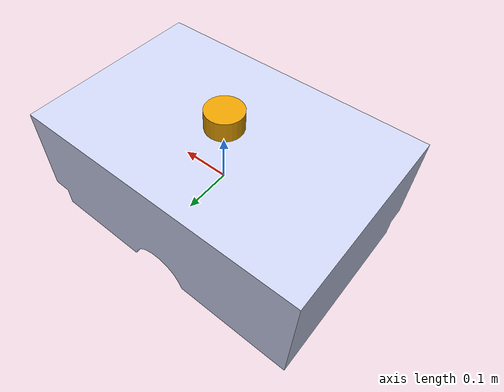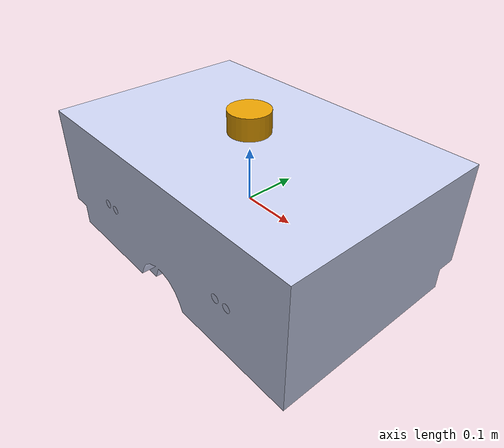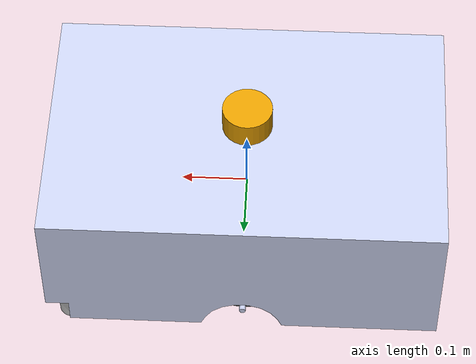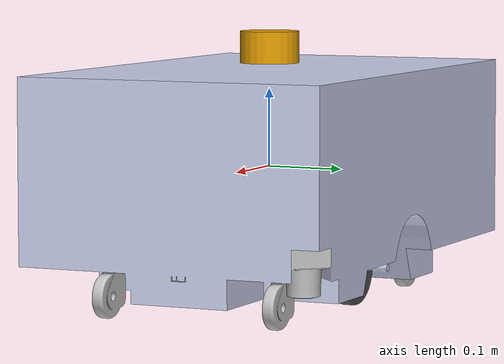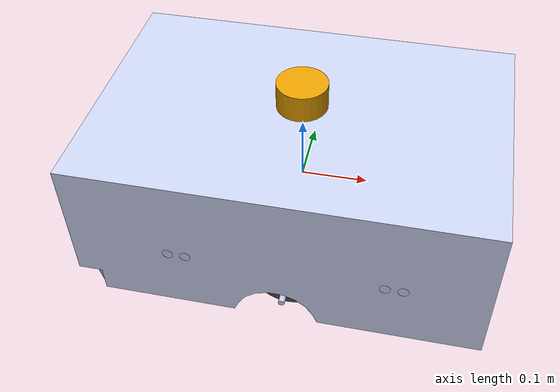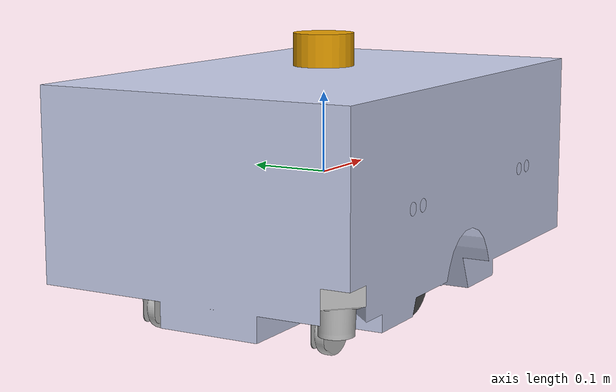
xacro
<?xml version="1.0" encoding="utf-8"?>
<robot
  name="robot_assisted_cleaning_solution" xmlns:xacro="example_robot">
  <xacro:include filename="$(find robot_assisted_cleaning_solution)/urdf/robot_assisted_cleaning_solution.gazebo.xacro" />

  <!-- region footprint -->
  <link name="base_footprint" />
  <joint name="base_joint" type="fixed">
    <parent link="base_footprint" />
    <child link="base_link" />
    <origin xyz="0 0 0" rpy="0 0 0" />
  </joint>
  <!-- endregion footprint-->

  <link
    name="base_link">
    <inertial>
      <origin
        xyz="-0.000913386239851091 -2.54764905186757E-06 0.0112927831007752"
        rpy="0 0 0" />
      <mass
        value="43.66289" />
      <inertia
        ixx="0.794216412051149"
        ixy="-0.000219442594284593"
        ixz="0.00035981237829047"
        iyy="1.53053604086592"
        iyz="-0.000149715728017838"
        izz="1.83362160851237" />
    </inertial>
    <visual>
      <origin
        xyz="0 0 0"
        rpy="0 0 0" />
      <geometry>
        <mesh
          filename="package://robot_assisted_cleaning_solution/meshes/base_link.STL" />
      </geometry>
      <material
        name="">
        <color
          rgba="0.792156862745098 0.819607843137255 0.933333333333333 1" />
      </material>
    </visual>
    <collision>
      <origin
        xyz="0 0 0"
        rpy="0 0 0" />
      <geometry>
        <mesh
          filename="package://robot_assisted_cleaning_solution/meshes/base_link.STL" />
      </geometry>
    </collision>
  </link>
  <link
    name="wheel_1">
    <inertial>
      <origin
        xyz="-0.000913386239851091 -2.54764905186757E-06 0.0112927831007752"
        rpy="0 0 0" />
      <mass
        value="43.66289" />
      <inertia
        ixx="0.794216412051149"
        ixy="-0.000219442594284593"
        ixz="0.00035981237829047"
        iyy="1.53053604086592"
        iyz="-0.000149715728017838"
        izz="1.83362160851237" />
    </inertial>
    <visual>
      <origin
        xyz="0 0 0"
        rpy="0 0 0" />
      <geometry>
        <mesh
          filename="package://robot_assisted_cleaning_solution/meshes/wheel_1.STL" />
      </geometry>
      <material
        name="">
        <color
          rgba="0.298039215686275 0.298039215686275 0.298039215686275 1" />
      </material>
    </visual>
    <collision>
      <origin
        xyz="0 0 0"
        rpy="0 0 0" />
      <geometry>
        <mesh
          filename="package://robot_assisted_cleaning_solution/meshes/wheel_1.STL" />
      </geometry>
    </collision>
  </link>
  <joint
    name="wheel_joint_1"
    type="continuous">
    <origin
      xyz="-5.78290400675118E-05 0.114675012827827 -0.122971466594445"
      rpy="0 0 0" />
    <parent
      link="base_link" />
    <child
      link="wheel_1" />
    <axis
      xyz="0 1 0" />
  </joint>
  <link
    name="wheel_2">
    <inertial>
      <origin
        xyz="-0.000913386239851091 -2.54764905186757E-06 0.0112927831007752"
        rpy="0 0 0" />
      <mass
        value="43.66289" />
      <inertia
        ixx="0.794216412051149"
        ixy="-0.000219442594284593"
        ixz="0.00035981237829047"
        iyy="1.53053604086592"
        iyz="-0.000149715728017838"
        izz="1.83362160851237" />
    </inertial>
    <visual>
      <origin
        xyz="0 0 0"
        rpy="0 0 0" />
      <geometry>
        <mesh
          filename="package://robot_assisted_cleaning_solution/meshes/wheel_2.STL" />
      </geometry>
      <material
        name="">
        <color
          rgba="0.298039215686275 0.298039215686275 0.298039215686275 1" />
      </material>
    </visual>
    <collision>
      <origin
        xyz="0 0 0"
        rpy="0 0 0" />
      <geometry>
        <mesh
          filename="package://robot_assisted_cleaning_solution/meshes/wheel_2.STL" />
      </geometry>
    </collision>
  </link>
  <joint
    name="wheel_joint_2"
    type="continuous">
    <origin
      xyz="-5.78290400674879E-05 -0.114614309053521 -0.122971466594445"
      rpy="0 0 0" />
    <parent
      link="base_link" />
    <child
      link="wheel_2" />
    <axis
      xyz="0 -1 0" />
  </joint>
  <link
    name="caster_1">
    <inertial>
      <origin
        xyz="-0.000913386239851091 -2.54764905186757E-06 0.0112927831007752"
        rpy="0 0 0" />
      <mass
        value="43.66289" />
      <inertia
        ixx="0.794216412051149"
        ixy="-0.000219442594284593"
        ixz="0.00035981237829047"
        iyy="1.53053604086592"
        iyz="-0.000149715728017838"
        izz="1.83362160851237" />
    </inertial>
    <visual>
      <origin
        xyz="0 0 0"
        rpy="0 0 0" />
      <geometry>
        <mesh
          filename="package://robot_assisted_cleaning_solution/meshes/caster_1.STL" />
      </geometry>
      <material
        name="">
        <color
          rgba="0.752941176470588 0.752941176470588 0.752941176470588 1" />
      </material>
    </visual>
    <collision>
      <origin
        xyz="0 0 0"
        rpy="0 0 0" />
      <geometry>
        <mesh
          filename="package://robot_assisted_cleaning_solution/meshes/caster_1.STL" />
      </geometry>
    </collision>
  </link>
  <joint
    name="caster_joint_1"
    type="continuous">
    <origin
      xyz="-0.208635525832463 -0.114614309053521 -0.105971545183645"
      rpy="0 0 0" />
    <parent
      link="base_link" />
    <child
      link="caster_1" />
    <axis
      xyz="0 0 -1" />
  </joint>
  <link
    name="caster_2">
    <inertial>
      <origin
        xyz="-0.000913386239851091 -2.54764905186757E-06 0.0112927831007752"
        rpy="0 0 0" />
      <mass
        value="43.66289" />
      <inertia
        ixx="0.794216412051149"
        ixy="-0.000219442594284593"
        ixz="0.00035981237829047"
        iyy="1.53053604086592"
        iyz="-0.000149715728017838"
        izz="1.83362160851237" />
    </inertial>
    <visual>
      <origin
        xyz="0 0 0"
        rpy="0 0 0" />
      <geometry>
        <mesh
          filename="package://robot_assisted_cleaning_solution/meshes/caster_2.STL" />
      </geometry>
      <material
        name="">
        <color
          rgba="0.752941176470588 0.752941176470588 0.752941176470588 1" />
      </material>
    </visual>
    <collision>
      <origin
        xyz="0 0 0"
        rpy="0 0 0" />
      <geometry>
        <mesh
          filename="package://robot_assisted_cleaning_solution/meshes/caster_2.STL" />
      </geometry>
    </collision>
  </link>
  <joint
    name="caster_joint_2"
    type="continuous">
    <origin
      xyz="0.208521761692918 -0.114614309053521 -0.105971545183645"
      rpy="0 0 0" />
    <parent
      link="base_link" />
    <child
      link="caster_2" />
    <axis
      xyz="0 0 -1" />
  </joint>
  <link
    name="caster_3">
    <inertial>
      <origin
        xyz="-0.000913386239851091 -2.54764905186757E-06 0.0112927831007752"
        rpy="0 0 0" />
      <mass
        value="43.66289" />
      <inertia
        ixx="0.794216412051149"
        ixy="-0.000219442594284593"
        ixz="0.00035981237829047"
        iyy="1.53053604086592"
        iyz="-0.000149715728017838"
        izz="1.83362160851237" />
    </inertial>
    <visual>
      <origin
        xyz="0 0 0"
        rpy="0 0 0" />
      <geometry>
        <mesh
          filename="package://robot_assisted_cleaning_solution/meshes/caster_3.STL" />
      </geometry>
      <material
        name="">
        <color
          rgba="0.752941176470588 0.752941176470588 0.752941176470588 1" />
      </material>
    </visual>
    <collision>
      <origin
        xyz="0 0 0"
        rpy="0 0 0" />
      <geometry>
        <mesh
          filename="package://robot_assisted_cleaning_solution/meshes/caster_3.STL" />
      </geometry>
    </collision>
  </link>
  <joint
    name="caster_joint_3"
    type="continuous">
    <origin
      xyz="0.208521761692915 0.114675012827827 -0.105971545183645"
      rpy="0 0 0" />
    <parent
      link="base_link" />
    <child
      link="caster_3" />
    <axis
      xyz="0 0 -1" />
  </joint>
  <link
    name="caster_4">
    <inertial>
      <origin
        xyz="-0.000913386239851091 -2.54764905186757E-06 0.0112927831007752"
        rpy="0 0 0" />
      <mass
        value="43.66289" />
      <inertia
        ixx="0.794216412051149"
        ixy="-0.000219442594284593"
        ixz="0.00035981237829047"
        iyy="1.53053604086592"
        iyz="-0.000149715728017838"
        izz="1.83362160851237" />
    </inertial>
    <visual>
      <origin
        xyz="0 0 0"
        rpy="0 0 0" />
      <geometry>
        <mesh
          filename="package://robot_assisted_cleaning_solution/meshes/caster_4.STL" />
      </geometry>
      <material
        name="">
        <color
          rgba="0.752941176470588 0.752941176470588 0.752941176470588 1" />
      </material>
    </visual>
    <collision>
      <origin
        xyz="0 0 0"
        rpy="0 0 0" />
      <geometry>
        <mesh
          filename="package://robot_assisted_cleaning_solution/meshes/caster_4.STL" />
      </geometry>
    </collision>
  </link>
  <joint
    name="caster_joint_4"
    type="continuous">
    <origin
      xyz="-0.208635525832461 0.114675012827827 -0.105971545183645"
      rpy="0 0 0" />
    <parent
      link="base_link" />
    <child
      link="caster_4" />
    <axis
      xyz="0 0 -1" />
  </joint>

  <link name="lidar_top">
    <visual>
      <geometry>
        <cylinder length="0.04080" radius="0.03785"/>
      </geometry>
    </visual>
  </link>
  <joint
    name="lidar_top_joint"
    type="fixed">
    <origin
      xyz="-0.00091 -0 0.1537"
      rpy="0 0 0" />
    <parent
      link="base_link" />
    <child
      link="lidar_top" />
    <axis
      xyz="0 0 0" />
  </joint>

  <link
    name="lidar_1">
    <inertial>
      <origin
        xyz="-0.000913386239851091 -2.54764905186757E-06 0.0112927831007752"
        rpy="0 0 0" />
      <mass
        value="43.66289" />
      <inertia
        ixx="0.794216412051149"
        ixy="-0.000219442594284593"
        ixz="0.00035981237829047"
        iyy="1.53053604086592"
        iyz="-0.000149715728017838"
        izz="1.83362160851237" />
    </inertial>
    <visual>
      <origin
        xyz="0 0 0"
        rpy="0 0 0" />
      <geometry>
        <mesh
          filename="package://robot_assisted_cleaning_solution/meshes/lidar_1.STL" />
      </geometry>
      <material
        name="">
        <color
          rgba="0.749019607843137 0.749019607843137 0.749019607843137 1" />
      </material>
    </visual>
    <collision>
      <origin
        xyz="0 0 0"
        rpy="0 0 0" />
      <geometry>
        <mesh
          filename="package://robot_assisted_cleaning_solution/meshes/lidar_1.STL" />
      </geometry>
    </collision>
  </link>
  <joint
    name="lidar_joint_1"
    type="fixed">
    <origin
      xyz="-0.300056882069774 -0.199969648112847 -0.095471545183645"
      rpy="0 0 0" />
    <parent
      link="base_link" />
    <child
      link="lidar_1" />
    <axis
      xyz="0 0 0" />
  </joint>
  <link
    name="lidar_2">
    <inertial>
      <origin
        xyz="-0.000913386239851091 -2.54764905186757E-06 0.0112927831007752"
        rpy="0 0 0" />
      <mass
        value="43.66289" />
      <inertia
        ixx="0.794216412051149"
        ixy="-0.000219442594284593"
        ixz="0.00035981237829047"
        iyy="1.53053604086592"
        iyz="-0.000149715728017838"
        izz="1.83362160851237" />
    </inertial>
    <visual>
      <origin
        xyz="0 0 0"
        rpy="0 0 0" />
      <geometry>
        <mesh
          filename="package://robot_assisted_cleaning_solution/meshes/lidar_2.STL" />
      </geometry>
      <material
        name="">
        <color
          rgba="0.749019607843137 0.749019607843137 0.749019607843137 1" />
      </material>
    </visual>
    <collision>
      <origin
        xyz="0 0 0"
        rpy="0 0 0" />
      <geometry>
        <mesh
          filename="package://robot_assisted_cleaning_solution/meshes/lidar_2.STL" />
      </geometry>
    </collision>
  </link>
  <joint
    name="lidar_joint_2"
    type="fixed">
    <origin
      xyz="0.299943117930226 0.200030351887153 -0.095471545183645"
      rpy="0 0 0" />
    <parent
      link="base_link" />
    <child
      link="lidar_2" />
    <axis
      xyz="0 0 0" />
  </joint>
  <link
    name="ir_1">
    <inertial>
      <origin
        xyz="-0.000913386239851091 -2.54764905186757E-06 0.0112927831007752"
        rpy="0 0 0" />
      <mass
        value="43.66289" />
      <inertia
        ixx="0.794216412051149"
        ixy="-0.000219442594284593"
        ixz="0.00035981237829047"
        iyy="1.53053604086592"
        iyz="-0.000149715728017838"
        izz="1.83362160851237" />
    </inertial>
    <visual>
      <origin
        xyz="0 0 0"
        rpy="0 0 0" />
      <geometry>
        <mesh
          filename="package://robot_assisted_cleaning_solution/meshes/ir_1.STL" />
      </geometry>
      <material
        name="">
        <color
          rgba="0.501960784313725 0.501960784313725 0.501960784313725 1" />
      </material>
    </visual>
    <collision>
      <origin
        xyz="0 0 0"
        rpy="0 0 0" />
      <geometry>
        <mesh
          filename="package://robot_assisted_cleaning_solution/meshes/ir_1.STL" />
      </geometry>
    </collision>
  </link>
  <joint
    name="ir_joint_1"
    type="fixed">
    <origin
      xyz="-0.264701543010446 0.00163035188715408 -0.112971545183645"
      rpy="3.14159265358979 0 3.14159265358979" />
    <parent
      link="base_link" />
    <child
      link="ir_1" />
    <axis
      xyz="0 0 0" />
  </joint>
  <link
    name="ir_2">
    <inertial>
      <origin
        xyz="-0.000913386239851091 -2.54764905186757E-06 0.0112927831007752"
        rpy="0 0 0" />
      <mass
        value="43.66289" />
      <inertia
        ixx="0.794216412051149"
        ixy="-0.000219442594284593"
        ixz="0.00035981237829047"
        iyy="1.53053604086592"
        iyz="-0.000149715728017838"
        izz="1.83362160851237" />
    </inertial>
    <visual>
      <origin
        xyz="0 0 0"
        rpy="0 0 0" />
      <geometry>
        <mesh
          filename="package://robot_assisted_cleaning_solution/meshes/ir_2.STL" />
      </geometry>
      <material
        name="">
        <color
          rgba="0.501960784313725 0.501960784313725 0.501960784313725 1" />
      </material>
    </visual>
    <collision>
      <origin
        xyz="0 0 0"
        rpy="0 0 0" />
      <geometry>
        <mesh
          filename="package://robot_assisted_cleaning_solution/meshes/ir_2.STL" />
      </geometry>
    </collision>
  </link>
  <joint
    name="ir_joint_2"
    type="fixed">
    <origin
      xyz="0.2645877788709 -0.00156964811284664 -0.112971545183645"
      rpy="0 0 0" />
    <parent
      link="base_link" />
    <child
      link="ir_2" />
    <axis
      xyz="0 0 0" />
  </joint>
  <link
    name="us_1">
    <inertial>
      <origin
        xyz="-0.000913386239851091 -2.54764905186757E-06 0.0112927831007752"
        rpy="0 0 0" />
      <mass
        value="43.66289" />
      <inertia
        ixx="0.794216412051149"
        ixy="-0.000219442594284593"
        ixz="0.00035981237829047"
        iyy="1.53053604086592"
        iyz="-0.000149715728017838"
        izz="1.83362160851237" />
    </inertial>
    <visual>
      <origin
        xyz="0 0 0"
        rpy="0 0 0" />
      <geometry>
        <mesh
          filename="package://robot_assisted_cleaning_solution/meshes/us_1.STL" />
      </geometry>
      <material
        name="">
        <color
          rgba="0.792156862745098 0.819607843137255 0.933333333333333 1" />
      </material>
    </visual>
  </link>
  <joint
    name="us_joint_1"
    type="fixed">
    <origin
      xyz="-0.154541543010445 -0.199974309053521 -0.002971545183645"
      rpy="3.14159265358979 0 -1.5707963267949" />
    <parent
      link="base_link" />
    <child
      link="us_1" />
    <axis
      xyz="0 0 0" />
  </joint>
  <link
    name="us_2">
    <inertial>
      <origin
        xyz="-0.000913386239851091 -2.54764905186757E-06 0.0112927831007752"
        rpy="0 0 0" />
      <mass
        value="43.66289" />
      <inertia
        ixx="0.794216412051149"
        ixy="-0.000219442594284593"
        ixz="0.00035981237829047"
        iyy="1.53053604086592"
        iyz="-0.000149715728017838"
        izz="1.83362160851237" />
    </inertial>
    <visual>
      <origin
        xyz="0 0 0"
        rpy="0 0 0" />
      <geometry>
        <mesh
          filename="package://robot_assisted_cleaning_solution/meshes/us_2.STL" />
      </geometry>
      <material
        name="">
        <color
          rgba="0.792156862745098 0.819607843137255 0.933333333333333 1" />
      </material>
    </visual>
  </link>
  <joint
    name="us_joint_2"
    type="fixed">
    <origin
      xyz="0.154541543010445 -0.199974309053521 -0.002971545183645"
      rpy="3.14159265358979 0 -1.5707963267949" />
    <parent
      link="base_link" />
    <child
      link="us_2" />
    <axis
      xyz="0 0 0" />
  </joint>
</robot>
